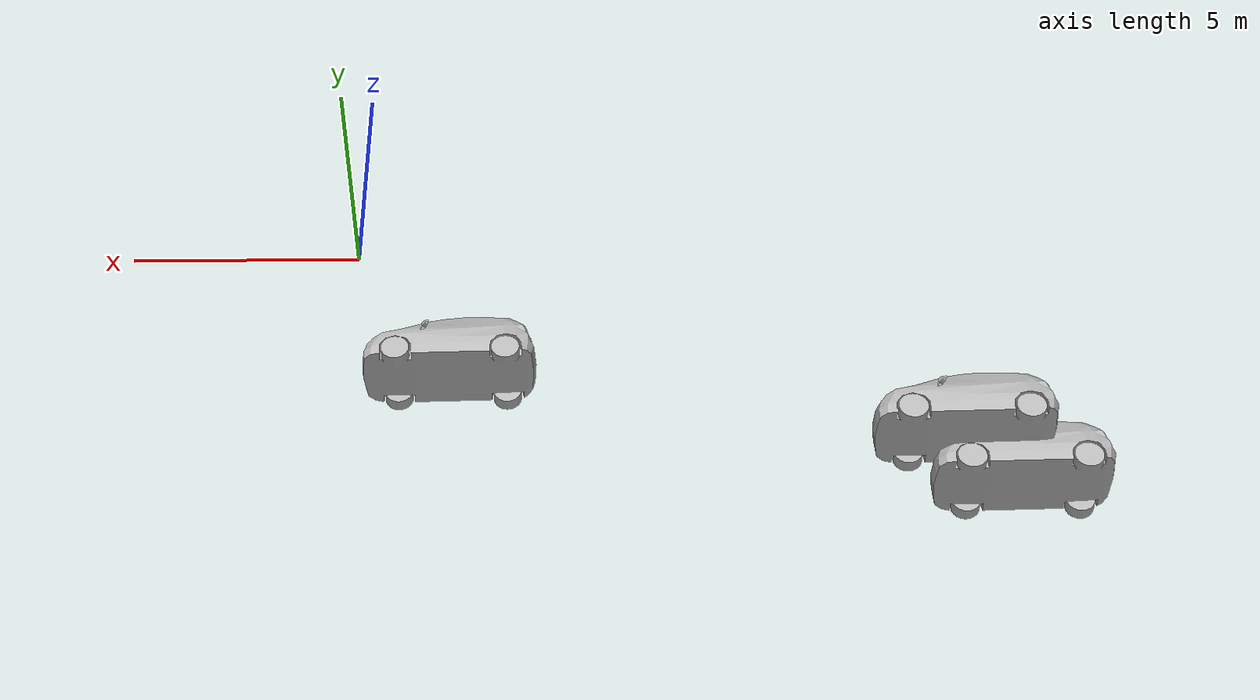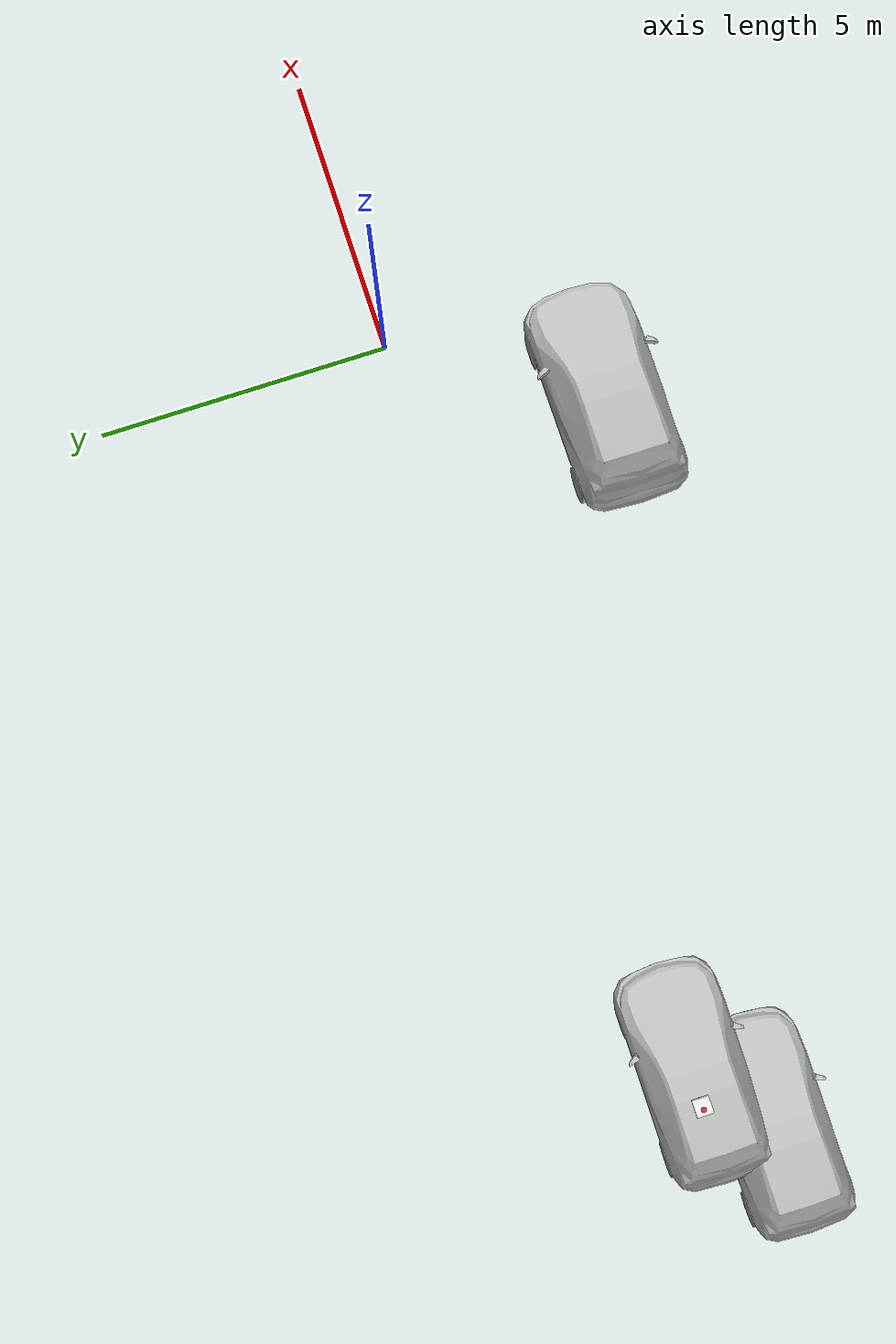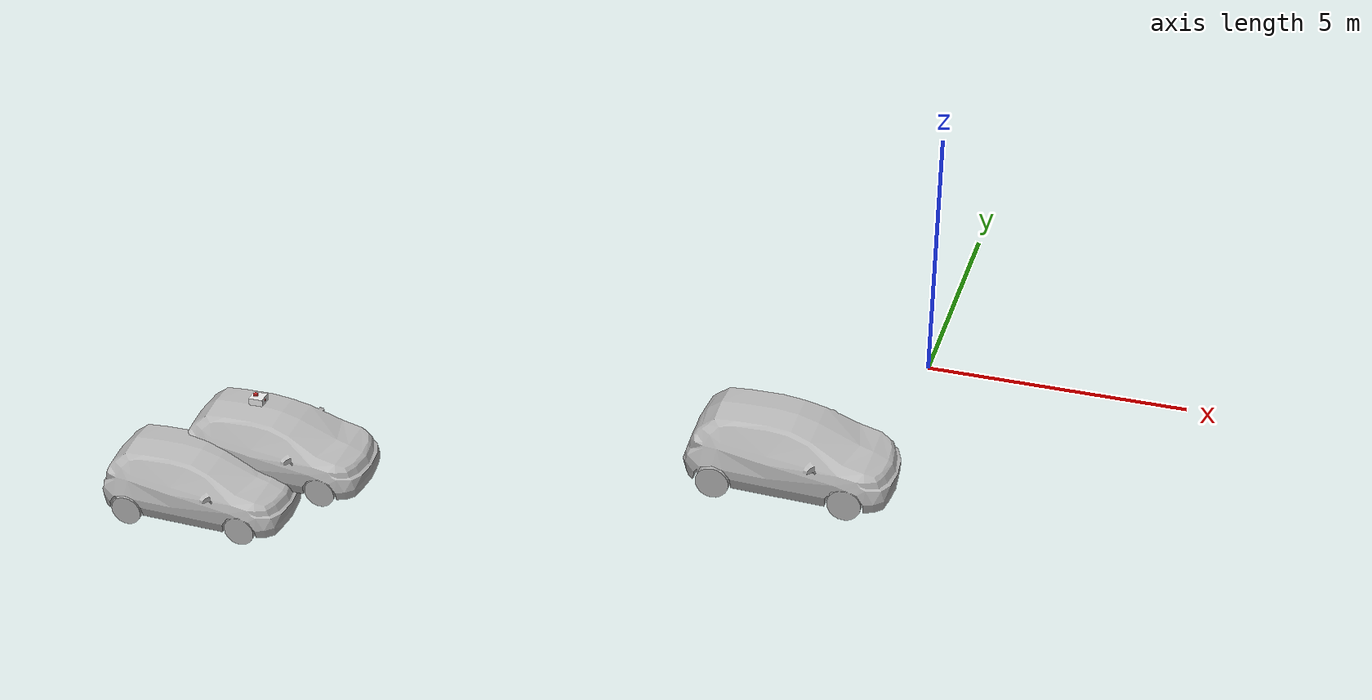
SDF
<?xml version='1.0'?>
<sdf version='1.7'>
  <model name='my_bot_car'>
    <link name='base_link'>
      <inertial>
        <pose>0.041667 0 0.091667 0 -0 0</pose>
        <mass>0.6</mass>
        <inertia>
          <ixx>0.00559667</ixx>
          <ixy>0</ixy>
          <ixz>0.000416667</ixz>
          <iyy>0.005805</iyy>
          <iyz>0</iyz>
          <izz>0.00783333</izz>
        </inertia>
      </inertial>
      <sensor name='camera' type='camera'>
        <visualize>1</visualize>
        <update_rate>10</update_rate>
        <camera>
          <horizontal_fov>1.089</horizontal_fov>
          <image>
            <format>R8G8B8</format>
            <width>1920</width>
            <height>1080</height>
          </image>
          <clip>
            <near>0.05</near>
            <far>30</far>
          </clip>
        </camera>
        <plugin name='camera_controller' filename='libgazebo_ros_camera.so'>
          <frame_name>camera_link_optical</frame_name>
        </plugin>
        <pose>0.205 0 0.08 0 -0 0</pose>
      </sensor>
      <sensor name='laser' type='ray'>
        <visualize>0</visualize>
        <update_rate>10</update_rate>
        <ray>
          <scan>
            <horizontal>
              <samples>360</samples>
              <min_angle>-3.14</min_angle>
              <max_angle>3.14</max_angle>
              <resolution>1</resolution>
            </horizontal>
            <vertical>
              <samples>1</samples>
              <min_angle>0</min_angle>
              <max_angle>0</max_angle>
            </vertical>
          </scan>
          <range>
            <min>0.3</min>
            <max>12</max>
          </range>
        </ray>
        <plugin name='laser_controller' filename='libgazebo_ros_ray_sensor.so'>
          <ros>
            <argument>~/out:=scan</argument>
          </ros>
          <output_type>sensor_msgs/LaserScan</output_type>
          <frame_name>laser_frame</frame_name>
        </plugin>
        <pose>0 0 0.175 0 -0 0</pose>
      </sensor>
      <self_collide>0</self_collide>
      <enable_wind>0</enable_wind>
      <kinematic>0</kinematic>
      <pose>-13.7946 -1.25161 -2.65285 -0.055014 -0.013604 0.000374</pose>
      <visual name='base_link_fixed_joint_lump__chassis_visual'>
        <pose>0.05 0 0.075 0 -0 0</pose>
        <geometry>
          <box>
            <size>0.3 0.3 0.15</size>
          </box>
        </geometry>
        <material>
          <script>
            <name>Gazebo/White</name>
            <uri>file://media/materials/scripts/gazebo.material</uri>
          </script>
          <shader type='pixel'/>
        </material>
        <transparency>0</transparency>
        <cast_shadows>1</cast_shadows>
      </visual>
      <visual name='base_link_fixed_joint_lump__camera_link_visual_1'>
        <pose>0.205 0 0.08 0 -0 0</pose>
        <geometry>
          <box>
            <size>0.01 0.03 0.03</size>
          </box>
        </geometry>
        <material>
          <script>
            <name>Gazebo/Red</name>
            <uri>file://media/materials/scripts/gazebo.material</uri>
          </script>
          <shader type='pixel'/>
        </material>
        <transparency>0</transparency>
        <cast_shadows>1</cast_shadows>
      </visual>
      <visual name='base_link_fixed_joint_lump__laser_frame_visual_2'>
        <pose>0 0 0.175 0 -0 0</pose>
        <geometry>
          <cylinder>
            <length>0.04</length>
            <radius>0.05</radius>
          </cylinder>
        </geometry>
        <material>
          <script>
            <name>Gazebo/Red</name>
            <uri>file://media/materials/scripts/gazebo.material</uri>
          </script>
          <shader type='pixel'/>
        </material>
        <transparency>0</transparency>
        <cast_shadows>1</cast_shadows>
      </visual>
      <collision name='base_link_fixed_joint_lump__chassis_collision'>
        <laser_retro>0</laser_retro>
        <max_contacts>10</max_contacts>
        <pose>0.05 0 0.075 0 -0 0</pose>
        <geometry>
          <box>
            <size>0.3 0.3 0.15</size>
          </box>
        </geometry>
        <surface>
          <friction>
            <ode>
              <mu>1</mu>
              <mu2>1</mu2>
              <fdir1>0 0 0</fdir1>
              <slip1>0</slip1>
              <slip2>0</slip2>
            </ode>
            <torsional>
              <coefficient>1</coefficient>
              <patch_radius>0</patch_radius>
              <surface_radius>0</surface_radius>
              <use_patch_radius>1</use_patch_radius>
              <ode>
                <slip>0</slip>
              </ode>
            </torsional>
          </friction>
          <bounce>
            <restitution_coefficient>0</restitution_coefficient>
            <threshold>1e+06</threshold>
          </bounce>
          <contact>
            <collide_without_contact>0</collide_without_contact>
            <collide_without_contact_bitmask>1</collide_without_contact_bitmask>
            <collide_bitmask>1</collide_bitmask>
            <ode>
              <soft_cfm>0</soft_cfm>
              <soft_erp>0.2</soft_erp>
              <kp>1e+13</kp>
              <kd>1</kd>
              <max_vel>0.01</max_vel>
              <min_depth>0</min_depth>
            </ode>
            <bullet>
              <split_impulse>1</split_impulse>
              <split_impulse_penetration_threshold>-0.01</split_impulse_penetration_threshold>
              <soft_cfm>0</soft_cfm>
              <soft_erp>0.2</soft_erp>
              <kp>1e+13</kp>
              <kd>1</kd>
            </bullet>
          </contact>
        </surface>
      </collision>
      <collision name='base_link_fixed_joint_lump__laser_frame_collision_1'>
        <laser_retro>0</laser_retro>
        <max_contacts>10</max_contacts>
        <pose>0 0 0.175 0 -0 0</pose>
        <geometry>
          <cylinder>
            <radius>0.05</radius>
            <length>0.04</length>
          </cylinder>
        </geometry>
        <surface>
          <friction>
            <ode>
              <mu>1</mu>
              <mu2>1</mu2>
              <fdir1>0 0 0</fdir1>
              <slip1>0</slip1>
              <slip2>0</slip2>
            </ode>
            <torsional>
              <coefficient>1</coefficient>
              <patch_radius>0</patch_radius>
              <surface_radius>0</surface_radius>
              <use_patch_radius>1</use_patch_radius>
              <ode>
                <slip>0</slip>
              </ode>
            </torsional>
          </friction>
          <bounce>
            <restitution_coefficient>0</restitution_coefficient>
            <threshold>1e+06</threshold>
          </bounce>
          <contact>
            <collide_without_contact>0</collide_without_contact>
            <collide_without_contact_bitmask>1</collide_without_contact_bitmask>
            <collide_bitmask>1</collide_bitmask>
            <ode>
              <soft_cfm>0</soft_cfm>
              <soft_erp>0.2</soft_erp>
              <kp>1e+13</kp>
              <kd>1</kd>
              <max_vel>0.01</max_vel>
              <min_depth>0</min_depth>
            </ode>
            <bullet>
              <split_impulse>1</split_impulse>
              <split_impulse_penetration_threshold>-0.01</split_impulse_penetration_threshold>
              <soft_cfm>0</soft_cfm>
              <soft_erp>0.2</soft_erp>
              <kp>1e+13</kp>
              <kd>1</kd>
            </bullet>
          </contact>
        </surface>
      </collision>
    </link>
    <model name='hatchback'>
      <static>1</static>
      <link name='link'>
        <collision name='collision'>
          <pose>0 0 0 0 -0 1.5708</pose>
          <geometry>
            <mesh>
              <scale>0.0254 0.0254 0.0254</scale>
              <uri>model://hatchback/meshes/hatchback.obj</uri>
            </mesh>
          </geometry>
        </collision>
        <visual name='visual'>
          <pose>0 0 0 0 -0 1.5708</pose>
          <geometry>
            <mesh>
              <scale>0.0254 0.0254 0.0254</scale>
              <uri>model://hatchback/meshes/hatchback.obj</uri>
            </mesh>
          </geometry>
        </visual>
      </link>
      <selfCollide>1</selfCollide>
      <pose>-13.5797 -1.38778 -4.19909 0 -0 0</pose>
    </model>
    <model name='hatchback_blue'>
      <static>1</static>
      <link name='link'>
        <collision name='collision'>
          <pose>0 0 0 0 -0 1.5708</pose>
          <geometry>
            <mesh>
              <scale>0.0254 0.0254 0.0254</scale>
              <uri>model://hatchback_blue/meshes/hatchback.obj</uri>
            </mesh>
          </geometry>
        </collision>
        <visual name='visual'>
          <pose>0 0 0 0 -0 1.5708</pose>
          <geometry>
            <mesh>
              <scale>0.0254 0.0254 0.0254</scale>
              <uri>model://hatchback_blue/meshes/hatchback.obj</uri>
            </mesh>
          </geometry>
        </visual>
      </link>
      <pose>-14.9042 -2.53717 -4.64649 0 -0 0</pose>
    </model>
    <model name='hatchback_red'>
      <static>1</static>
      <link name='link'>
        <collision name='collision'>
          <pose>0 0 0 0 -0 1.5708</pose>
          <geometry>
            <mesh>
              <scale>0.0254 0.0254 0.0254</scale>
              <uri>model://hatchback_red/meshes/hatchback.obj</uri>
            </mesh>
          </geometry>
        </collision>
        <visual name='visual'>
          <pose>0 0 0 0 -0 1.5708</pose>
          <geometry>
            <mesh>
              <scale>0.0254 0.0254 0.0254</scale>
              <uri>model://hatchback_red/meshes/hatchback.obj</uri>
            </mesh>
          </geometry>
        </visual>
      </link>
      <pose>-2.19088 -3.33898 -0.793738 0 -0 0</pose>
    </model>
    <static>0</static>
    <allow_auto_disable>1</allow_auto_disable>
    <plugin name='diff_drive' filename='libgazebo_ros_diff_drive.so'>
      <left_joint>left_wheel_joint</left_joint>
      <right_joint>right_wheel_joint</right_joint>
      <wheel_separation>0.35</wheel_separation>
      <wheel_diameter>0.1</wheel_diameter>
      <max_wheel_torque>200</max_wheel_torque>
      <max_wheel_acceleration>50.0</max_wheel_acceleration>
      <odometry_frame>odom</odometry_frame>
      <robot_base_frame>base_link</robot_base_frame>
      <publish_odom>1</publish_odom>
      <publish_odom_tf>1</publish_odom_tf>
      <publish_wheel_tf>1</publish_wheel_tf>
    </plugin>
  </model>
</sdf>
